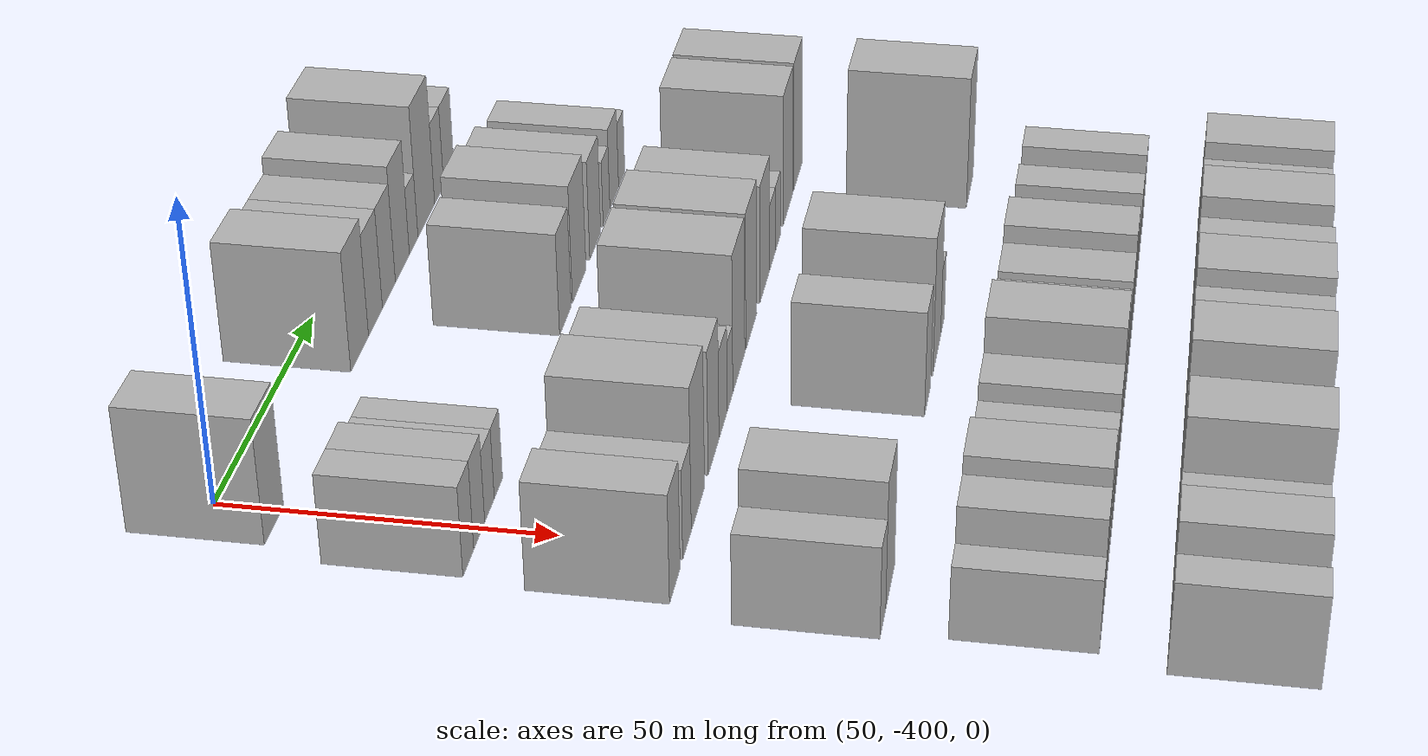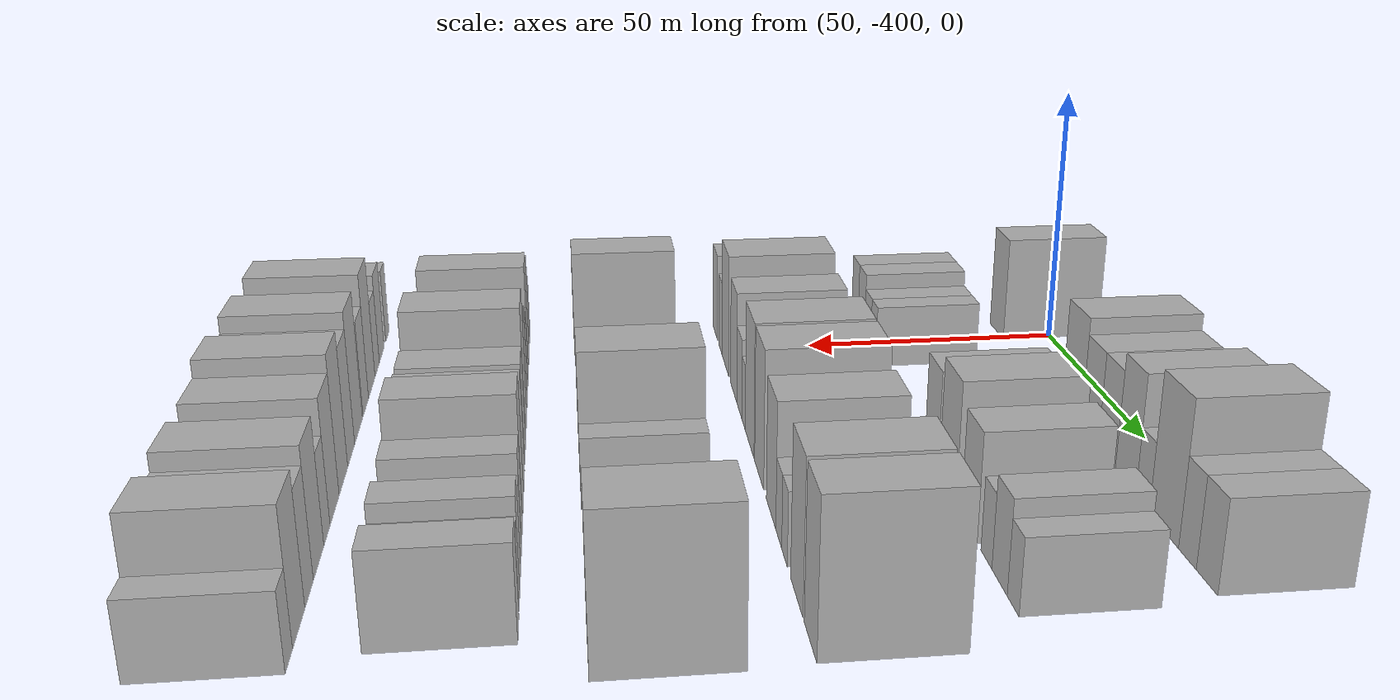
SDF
<sdf version="1.6">
 <world name="default">
  <model name="building_14">
   <static>1</static>
   <pose>50.0000 -403.7910 0 0.000000 0.000000 0.000000</pose>
   <link name="link">
    <pose>0 0 10.50 0 0 0</pose>
    <collision name="collision"><geometry><box><size>20.0000 9.2728 21.0000</size></box></geometry></collision>
    <visual name="visual">
     <cast_shadows>0</cast_shadows>
     <geometry><box><size>20.0000 9.2728 21.0000</size></box></geometry>
     <material>
      <script>
       <uri>model://HANNAS_wall/materials/scripts</uri>
       <uri>model://HANNAS_wall/materials/textures</uri>
       <name>vrc/HANNAS_wall</name>
      </script>
     </material>
    </visual>
   </link>
  </model>
  <model name="building_15">
   <static>1</static>
   <pose>50.0000 -358.9946 0 0.000000 0.000000 0.000000</pose>
   <link name="link">
    <pose>0 0 10.50 0 0 0</pose>
    <collision name="collision"><geometry><box><size>20.0000 10.1067 21.0000</size></box></geometry></collision>
    <visual name="visual">
     <cast_shadows>0</cast_shadows>
     <geometry><box><size>20.0000 10.1067 21.0000</size></box></geometry>
     <material>
      <script>
       <uri>model://HANNAS_wall/materials/scripts</uri>
       <uri>model://HANNAS_wall/materials/textures</uri>
       <name>vrc/HANNAS_wall</name>
      </script>
     </material>
    </visual>
   </link>
  </model>
  <model name="building_16">
   <static>1</static>
   <pose>50.0000 -349.8433 0 0.000000 0.000000 0.000000</pose>
   <link name="link">
    <pose>0 0 9.00 0 0 0</pose>
    <collision name="collision"><geometry><box><size>20.0000 8.1957 18.0000</size></box></geometry></collision>
    <visual name="visual">
     <cast_shadows>0</cast_shadows>
     <geometry><box><size>20.0000 8.1957 18.0000</size></box></geometry>
     <material>
      <script>
       <uri>model://HANNAS_wall/materials/scripts</uri>
       <uri>model://HANNAS_wall/materials/textures</uri>
       <name>vrc/HANNAS_wall</name>
      </script>
     </material>
    </visual>
   </link>
  </model>
  <model name="building_17">
   <static>1</static>
   <pose>50.0000 -341.8175 0 0.000000 0.000000 0.000000</pose>
   <link name="link">
    <pose>0 0 9.00 0 0 0</pose>
    <collision name="collision"><geometry><box><size>20.0000 7.8559 18.0000</size></box></geometry></collision>
    <visual name="visual">
     <cast_shadows>0</cast_shadows>
     <geometry><box><size>20.0000 7.8559 18.0000</size></box></geometry>
     <material>
      <script>
       <uri>model://HANNAS_wall/materials/scripts</uri>
       <uri>model://HANNAS_wall/materials/textures</uri>
       <name>vrc/HANNAS_wall</name>
      </script>
     </material>
    </visual>
   </link>
  </model>
  <model name="building_18">
   <static>1</static>
   <pose>50.0000 -333.5378 0 0.000000 0.000000 0.000000</pose>
   <link name="link">
    <pose>0 0 10.50 0 0 0</pose>
    <collision name="collision"><geometry><box><size>20.0000 8.7036 21.0000</size></box></geometry></collision>
    <visual name="visual">
     <cast_shadows>0</cast_shadows>
     <geometry><box><size>20.0000 8.7036 21.0000</size></box></geometry>
     <material>
      <script>
       <uri>model://HANNAS_wall/materials/scripts</uri>
       <uri>model://HANNAS_wall/materials/textures</uri>
       <name>vrc/HANNAS_wall</name>
      </script>
     </material>
    </visual>
   </link>
  </model>
  <model name="building_19">
   <static>1</static>
   <pose>50.0000 -326.4478 0 0.000000 0.000000 0.000000</pose>
   <link name="link">
    <pose>0 0 6.00 0 0 0</pose>
    <collision name="collision"><geometry><box><size>20.0000 5.4764 12.0000</size></box></geometry></collision>
    <visual name="visual">
     <cast_shadows>0</cast_shadows>
     <geometry><box><size>20.0000 5.4764 12.0000</size></box></geometry>
     <material>
      <script>
       <uri>model://HANNAS_wall/materials/scripts</uri>
       <uri>model://HANNAS_wall/materials/textures</uri>
       <name>vrc/HANNAS_wall</name>
      </script>
     </material>
    </visual>
   </link>
  </model>
  <model name="building_20">
   <static>1</static>
   <pose>50.0000 -318.2352 0 0.000000 0.000000 0.000000</pose>
   <link name="link">
    <pose>0 0 12.00 0 0 0</pose>
    <collision name="collision"><geometry><box><size>20.0000 10.9488 24.0000</size></box></geometry></collision>
    <visual name="visual">
     <cast_shadows>0</cast_shadows>
     <geometry><box><size>20.0000 10.9488 24.0000</size></box></geometry>
     <material>
      <script>
       <uri>model://HANNAS_wall/materials/scripts</uri>
       <uri>model://HANNAS_wall/materials/textures</uri>
       <name>vrc/HANNAS_wall</name>
      </script>
     </material>
    </visual>
   </link>
  </model>
  <model name="building_21">
   <static>1</static>
   <pose>50.0000 -309.6985 0 0.000000 0.000000 0.000000</pose>
   <link name="link">
    <pose>0 0 7.50 0 0 0</pose>
    <collision name="collision"><geometry><box><size>20.0000 6.1246 15.0000</size></box></geometry></collision>
    <visual name="visual">
     <cast_shadows>0</cast_shadows>
     <geometry><box><size>20.0000 6.1246 15.0000</size></box></geometry>
     <material>
      <script>
       <uri>model://HANNAS_wall/materials/scripts</uri>
       <uri>model://HANNAS_wall/materials/textures</uri>
       <name>vrc/HANNAS_wall</name>
      </script>
     </material>
    </visual>
   </link>
  </model>
  <model name="building_22">
   <static>1</static>
   <pose>50.0000 -303.1202 0 0.000000 0.000000 0.000000</pose>
   <link name="link">
    <pose>0 0 7.50 0 0 0</pose>
    <collision name="collision"><geometry><box><size>20.0000 7.0321 15.0000</size></box></geometry></collision>
    <visual name="visual">
     <cast_shadows>0</cast_shadows>
     <geometry><box><size>20.0000 7.0321 15.0000</size></box></geometry>
     <material>
      <script>
       <uri>model://HANNAS_wall/materials/scripts</uri>
       <uri>model://HANNAS_wall/materials/textures</uri>
       <name>vrc/HANNAS_wall</name>
      </script>
     </material>
    </visual>
   </link>
  </model>
  <model name="building_127">
   <static>1</static>
   <pose>79.0000 -408.2824 0 0.000000 0.000000 0.000000</pose>
   <link name="link">
    <pose>0 0 7.50 0 0 0</pose>
    <collision name="collision"><geometry><box><size>20.0000 6.2899 15.0000</size></box></geometry></collision>
    <visual name="visual">
     <cast_shadows>0</cast_shadows>
     <geometry><box><size>20.0000 6.2899 15.0000</size></box></geometry>
     <material>
      <script>
       <uri>model://HANNAS_wall/materials/scripts</uri>
       <uri>model://HANNAS_wall/materials/textures</uri>
       <name>vrc/HANNAS_wall</name>
      </script>
     </material>
    </visual>
   </link>
  </model>
  <model name="building_128">
   <static>1</static>
   <pose>79.0000 -401.8749 0 0.000000 0.000000 0.000000</pose>
   <link name="link">
    <pose>0 0 7.50 0 0 0</pose>
    <collision name="collision"><geometry><box><size>20.0000 6.5253 15.0000</size></box></geometry></collision>
    <visual name="visual">
     <cast_shadows>0</cast_shadows>
     <geometry><box><size>20.0000 6.5253 15.0000</size></box></geometry>
     <material>
      <script>
       <uri>model://HANNAS_wall/materials/scripts</uri>
       <uri>model://HANNAS_wall/materials/textures</uri>
       <name>vrc/HANNAS_wall</name>
      </script>
     </material>
    </visual>
   </link>
  </model>
  <model name="building_129">
   <static>1</static>
   <pose>79.0000 -395.7214 0 0.000000 0.000000 0.000000</pose>
   <link name="link">
    <pose>0 0 6.00 0 0 0</pose>
    <collision name="collision"><geometry><box><size>20.0000 5.7816 12.0000</size></box></geometry></collision>
    <visual name="visual">
     <cast_shadows>0</cast_shadows>
     <geometry><box><size>20.0000 5.7816 12.0000</size></box></geometry>
     <material>
      <script>
       <uri>model://HANNAS_wall/materials/scripts</uri>
       <uri>model://HANNAS_wall/materials/textures</uri>
       <name>vrc/HANNAS_wall</name>
      </script>
     </material>
    </visual>
   </link>
  </model>
  <model name="building_130">
   <static>1</static>
   <pose>79.0000 -390.2579 0 0.000000 0.000000 0.000000</pose>
   <link name="link">
    <pose>0 0 6.00 0 0 0</pose>
    <collision name="collision"><geometry><box><size>20.0000 5.1454 12.0000</size></box></geometry></collision>
    <visual name="visual">
     <cast_shadows>0</cast_shadows>
     <geometry><box><size>20.0000 5.1454 12.0000</size></box></geometry>
     <material>
      <script>
       <uri>model://HANNAS_wall/materials/scripts</uri>
       <uri>model://HANNAS_wall/materials/textures</uri>
       <name>vrc/HANNAS_wall</name>
      </script>
     </material>
    </visual>
   </link>
  </model>
  <model name="building_131">
   <static>1</static>
   <pose>79.0000 -344.8987 0 0.000000 0.000000 0.000000</pose>
   <link name="link">
    <pose>0 0 9.00 0 0 0</pose>
    <collision name="collision"><geometry><box><size>20.0000 8.5244 18.0000</size></box></geometry></collision>
    <visual name="visual">
     <cast_shadows>0</cast_shadows>
     <geometry><box><size>20.0000 8.5244 18.0000</size></box></geometry>
     <material>
      <script>
       <uri>model://HANNAS_wall/materials/scripts</uri>
       <uri>model://HANNAS_wall/materials/textures</uri>
       <name>vrc/HANNAS_wall</name>
      </script>
     </material>
    </visual>
   </link>
  </model>
  <model name="building_132">
   <static>1</static>
   <pose>79.0000 -334.4951 0 0.000000 0.000000 0.000000</pose>
   <link name="link">
    <pose>0 0 10.50 0 0 0</pose>
    <collision name="collision"><geometry><box><size>20.0000 10.2828 21.0000</size></box></geometry></collision>
    <visual name="visual">
     <cast_shadows>0</cast_shadows>
     <geometry><box><size>20.0000 10.2828 21.0000</size></box></geometry>
     <material>
      <script>
       <uri>model://HANNAS_wall/materials/scripts</uri>
       <uri>model://HANNAS_wall/materials/textures</uri>
       <name>vrc/HANNAS_wall</name>
      </script>
     </material>
    </visual>
   </link>
  </model>
  <model name="building_133">
   <static>1</static>
   <pose>79.0000 -321.9960 0 0.000000 0.000000 0.000000</pose>
   <link name="link">
    <pose>0 0 9.00 0 0 0</pose>
    <collision name="collision"><geometry><box><size>20.0000 8.7153 18.0000</size></box></geometry></collision>
    <visual name="visual">
     <cast_shadows>0</cast_shadows>
     <geometry><box><size>20.0000 8.7153 18.0000</size></box></geometry>
     <material>
      <script>
       <uri>model://HANNAS_wall/materials/scripts</uri>
       <uri>model://HANNAS_wall/materials/textures</uri>
       <name>vrc/HANNAS_wall</name>
      </script>
     </material>
    </visual>
   </link>
  </model>
  <model name="building_134">
   <static>1</static>
   <pose>79.0000 -312.8724 0 0.000000 0.000000 0.000000</pose>
   <link name="link">
    <pose>0 0 6.00 0 0 0</pose>
    <collision name="collision"><geometry><box><size>20.0000 5.5320 12.0000</size></box></geometry></collision>
    <visual name="visual">
     <cast_shadows>0</cast_shadows>
     <geometry><box><size>20.0000 5.5320 12.0000</size></box></geometry>
     <material>
      <script>
       <uri>model://HANNAS_wall/materials/scripts</uri>
       <uri>model://HANNAS_wall/materials/textures</uri>
       <name>vrc/HANNAS_wall</name>
      </script>
     </material>
    </visual>
   </link>
  </model>
  <model name="building_135">
   <static>1</static>
   <pose>79.0000 -306.4545 0 0.000000 0.000000 0.000000</pose>
   <link name="link">
    <pose>0 0 7.50 0 0 0</pose>
    <collision name="collision"><geometry><box><size>20.0000 7.3039 15.0000</size></box></geometry></collision>
    <visual name="visual">
     <cast_shadows>0</cast_shadows>
     <geometry><box><size>20.0000 7.3039 15.0000</size></box></geometry>
     <material>
      <script>
       <uri>model://HANNAS_wall/materials/scripts</uri>
       <uri>model://HANNAS_wall/materials/textures</uri>
       <name>vrc/HANNAS_wall</name>
      </script>
     </material>
    </visual>
   </link>
  </model>
  <model name="building_136">
   <static>1</static>
   <pose>79.0000 -300.1336 0 0.000000 0.000000 0.000000</pose>
   <link name="link">
    <pose>0 0 6.00 0 0 0</pose>
    <collision name="collision"><geometry><box><size>20.0000 5.3379 12.0000</size></box></geometry></collision>
    <visual name="visual">
     <cast_shadows>0</cast_shadows>
     <geometry><box><size>20.0000 5.3379 12.0000</size></box></geometry>
     <material>
      <script>
       <uri>model://HANNAS_wall/materials/scripts</uri>
       <uri>model://HANNAS_wall/materials/textures</uri>
       <name>vrc/HANNAS_wall</name>
      </script>
     </material>
    </visual>
   </link>
  </model>
  <model name="building_231">
   <static>1</static>
   <pose>108.0000 -408.9824 0 0.000000 0.000000 0.000000</pose>
   <link name="link">
    <pose>0 0 9.00 0 0 0</pose>
    <collision name="collision"><geometry><box><size>20.0000 8.0269 18.0000</size></box></geometry></collision>
    <visual name="visual">
     <cast_shadows>0</cast_shadows>
     <geometry><box><size>20.0000 8.0269 18.0000</size></box></geometry>
     <material>
      <script>
       <uri>model://HANNAS_wall/materials/scripts</uri>
       <uri>model://HANNAS_wall/materials/textures</uri>
       <name>vrc/HANNAS_wall</name>
      </script>
     </material>
    </visual>
   </link>
  </model>
  <model name="building_232">
   <static>1</static>
   <pose>108.0000 -399.6079 0 0.000000 0.000000 0.000000</pose>
   <link name="link">
    <pose>0 0 7.50 0 0 0</pose>
    <collision name="collision"><geometry><box><size>20.0000 6.7221 15.0000</size></box></geometry></collision>
    <visual name="visual">
     <cast_shadows>0</cast_shadows>
     <geometry><box><size>20.0000 6.7221 15.0000</size></box></geometry>
     <material>
      <script>
       <uri>model://HANNAS_wall/materials/scripts</uri>
       <uri>model://HANNAS_wall/materials/textures</uri>
       <name>vrc/HANNAS_wall</name>
      </script>
     </material>
    </visual>
   </link>
  </model>
  <model name="building_233">
   <static>1</static>
   <pose>108.0000 -390.8553 0 0.000000 0.000000 0.000000</pose>
   <link name="link">
    <pose>0 0 12.00 0 0 0</pose>
    <collision name="collision"><geometry><box><size>20.0000 10.7832 24.0000</size></box></geometry></collision>
    <visual name="visual">
     <cast_shadows>0</cast_shadows>
     <geometry><box><size>20.0000 10.7832 24.0000</size></box></geometry>
     <material>
      <script>
       <uri>model://HANNAS_wall/materials/scripts</uri>
       <uri>model://HANNAS_wall/materials/textures</uri>
       <name>vrc/HANNAS_wall</name>
      </script>
     </material>
    </visual>
   </link>
  </model>
  <model name="building_234">
   <static>1</static>
   <pose>108.0000 -377.8602 0 0.000000 0.000000 0.000000</pose>
   <link name="link">
    <pose>0 0 10.50 0 0 0</pose>
    <collision name="collision"><geometry><box><size>20.0000 9.2069 21.0000</size></box></geometry></collision>
    <visual name="visual">
     <cast_shadows>0</cast_shadows>
     <geometry><box><size>20.0000 9.2069 21.0000</size></box></geometry>
     <material>
      <script>
       <uri>model://HANNAS_wall/materials/scripts</uri>
       <uri>model://HANNAS_wall/materials/textures</uri>
       <name>vrc/HANNAS_wall</name>
      </script>
     </material>
    </visual>
   </link>
  </model>
  <model name="building_235">
   <static>1</static>
   <pose>108.0000 -369.5949 0 0.000000 0.000000 0.000000</pose>
   <link name="link">
    <pose>0 0 7.50 0 0 0</pose>
    <collision name="collision"><geometry><box><size>20.0000 7.3237 15.0000</size></box></geometry></collision>
    <visual name="visual">
     <cast_shadows>0</cast_shadows>
     <geometry><box><size>20.0000 7.3237 15.0000</size></box></geometry>
     <material>
      <script>
       <uri>model://HANNAS_wall/materials/scripts</uri>
       <uri>model://HANNAS_wall/materials/textures</uri>
       <name>vrc/HANNAS_wall</name>
      </script>
     </material>
    </visual>
   </link>
  </model>
  <model name="building_236">
   <static>1</static>
   <pose>108.0000 -363.4391 0 0.000000 0.000000 0.000000</pose>
   <link name="link">
    <pose>0 0 6.00 0 0 0</pose>
    <collision name="collision"><geometry><box><size>20.0000 4.9880 12.0000</size></box></geometry></collision>
    <visual name="visual">
     <cast_shadows>0</cast_shadows>
     <geometry><box><size>20.0000 4.9880 12.0000</size></box></geometry>
     <material>
      <script>
       <uri>model://HANNAS_wall/materials/scripts</uri>
       <uri>model://HANNAS_wall/materials/textures</uri>
       <name>vrc/HANNAS_wall</name>
      </script>
     </material>
    </visual>
   </link>
  </model>
  <model name="building_237">
   <static>1</static>
   <pose>108.0000 -355.3836 0 0.000000 0.000000 0.000000</pose>
   <link name="link">
    <pose>0 0 12.00 0 0 0</pose>
    <collision name="collision"><geometry><box><size>20.0000 11.1229 24.0000</size></box></geometry></collision>
    <visual name="visual">
     <cast_shadows>0</cast_shadows>
     <geometry><box><size>20.0000 11.1229 24.0000</size></box></geometry>
     <material>
      <script>
       <uri>model://HANNAS_wall/materials/scripts</uri>
       <uri>model://HANNAS_wall/materials/textures</uri>
       <name>vrc/HANNAS_wall</name>
      </script>
     </material>
    </visual>
   </link>
  </model>
  <model name="building_238">
   <static>1</static>
   <pose>108.0000 -343.4930 0 0.000000 0.000000 0.000000</pose>
   <link name="link">
    <pose>0 0 12.00 0 0 0</pose>
    <collision name="collision"><geometry><box><size>20.0000 10.6583 24.0000</size></box></geometry></collision>
    <visual name="visual">
     <cast_shadows>0</cast_shadows>
     <geometry><box><size>20.0000 10.6583 24.0000</size></box></geometry>
     <material>
      <script>
       <uri>model://HANNAS_wall/materials/scripts</uri>
       <uri>model://HANNAS_wall/materials/textures</uri>
       <name>vrc/HANNAS_wall</name>
      </script>
     </material>
    </visual>
   </link>
  </model>
  <model name="building_239">
   <static>1</static>
   <pose>108.0000 -330.1484 0 0.000000 0.000000 0.000000</pose>
   <link name="link">
    <pose>0 0 10.50 0 0 0</pose>
    <collision name="collision"><geometry><box><size>20.0000 10.0309 21.0000</size></box></geometry></collision>
    <visual name="visual">
     <cast_shadows>0</cast_shadows>
     <geometry><box><size>20.0000 10.0309 21.0000</size></box></geometry>
     <material>
      <script>
       <uri>model://HANNAS_wall/materials/scripts</uri>
       <uri>model://HANNAS_wall/materials/textures</uri>
       <name>vrc/HANNAS_wall</name>
      </script>
     </material>
    </visual>
   </link>
  </model>
  <model name="building_240">
   <static>1</static>
   <pose>108.0000 -322.2092 0 0.000000 0.000000 0.000000</pose>
   <link name="link">
    <pose>0 0 6.00 0 0 0</pose>
    <collision name="collision"><geometry><box><size>20.0000 5.8475 12.0000</size></box></geometry></collision>
    <visual name="visual">
     <cast_shadows>0</cast_shadows>
     <geometry><box><size>20.0000 5.8475 12.0000</size></box></geometry>
     <material>
      <script>
       <uri>model://HANNAS_wall/materials/scripts</uri>
       <uri>model://HANNAS_wall/materials/textures</uri>
       <name>vrc/HANNAS_wall</name>
      </script>
     </material>
    </visual>
   </link>
  </model>
  <model name="building_241">
   <static>1</static>
   <pose>108.0000 -316.6470 0 0.000000 0.000000 0.000000</pose>
   <link name="link">
    <pose>0 0 6.00 0 0 0</pose>
    <collision name="collision"><geometry><box><size>20.0000 5.2770 12.0000</size></box></geometry></collision>
    <visual name="visual">
     <cast_shadows>0</cast_shadows>
     <geometry><box><size>20.0000 5.2770 12.0000</size></box></geometry>
     <material>
      <script>
       <uri>model://HANNAS_wall/materials/scripts</uri>
       <uri>model://HANNAS_wall/materials/textures</uri>
       <name>vrc/HANNAS_wall</name>
      </script>
     </material>
    </visual>
   </link>
  </model>
  <model name="building_242">
   <static>1</static>
   <pose>108.0000 -305.7270 0 0.000000 0.000000 0.000000</pose>
   <link name="link">
    <pose>0 0 12.00 0 0 0</pose>
    <collision name="collision"><geometry><box><size>20.0000 10.5631 24.0000</size></box></geometry></collision>
    <visual name="visual">
     <cast_shadows>0</cast_shadows>
     <geometry><box><size>20.0000 10.5631 24.0000</size></box></geometry>
     <material>
      <script>
       <uri>model://HANNAS_wall/materials/scripts</uri>
       <uri>model://HANNAS_wall/materials/textures</uri>
       <name>vrc/HANNAS_wall</name>
      </script>
     </material>
    </visual>
   </link>
  </model>
  <model name="building_243">
   <static>1</static>
   <pose>108.0000 -294.5891 0 0.000000 0.000000 0.000000</pose>
   <link name="link">
    <pose>0 0 12.00 0 0 0</pose>
    <collision name="collision"><geometry><box><size>20.0000 9.7126 24.0000</size></box></geometry></collision>
    <visual name="visual">
     <cast_shadows>0</cast_shadows>
     <geometry><box><size>20.0000 9.7126 24.0000</size></box></geometry>
     <material>
      <script>
       <uri>model://HANNAS_wall/materials/scripts</uri>
       <uri>model://HANNAS_wall/materials/textures</uri>
       <name>vrc/HANNAS_wall</name>
      </script>
     </material>
    </visual>
   </link>
  </model>
  <model name="building_341">
   <static>1</static>
   <pose>137.0000 -412.9906 0 0.000000 0.000000 0.000000</pose>
   <link name="link">
    <pose>0 0 7.50 0 0 0</pose>
    <collision name="collision"><geometry><box><size>20.0000 6.3452 15.0000</size></box></geometry></collision>
    <visual name="visual">
     <cast_shadows>0</cast_shadows>
     <geometry><box><size>20.0000 6.3452 15.0000</size></box></geometry>
     <material>
      <script>
       <uri>model://HANNAS_wall/materials/scripts</uri>
       <uri>model://HANNAS_wall/materials/textures</uri>
       <name>vrc/HANNAS_wall</name>
      </script>
     </material>
    </visual>
   </link>
  </model>
  <model name="building_342">
   <static>1</static>
   <pose>137.0000 -404.8087 0 0.000000 0.000000 0.000000</pose>
   <link name="link">
    <pose>0 0 10.50 0 0 0</pose>
    <collision name="collision"><geometry><box><size>20.0000 10.0185 21.0000</size></box></geometry></collision>
    <visual name="visual">
     <cast_shadows>0</cast_shadows>
     <geometry><box><size>20.0000 10.0185 21.0000</size></box></geometry>
     <material>
      <script>
       <uri>model://HANNAS_wall/materials/scripts</uri>
       <uri>model://HANNAS_wall/materials/textures</uri>
       <name>vrc/HANNAS_wall</name>
      </script>
     </material>
    </visual>
   </link>
  </model>
  <model name="building_343">
   <static>1</static>
   <pose>137.0000 -358.6178 0 0.000000 0.000000 0.000000</pose>
   <link name="link">
    <pose>0 0 9.00 0 0 0</pose>
    <collision name="collision"><geometry><box><size>20.0000 8.1211 18.0000</size></box></geometry></collision>
    <visual name="visual">
     <cast_shadows>0</cast_shadows>
     <geometry><box><size>20.0000 8.1211 18.0000</size></box></geometry>
     <material>
      <script>
       <uri>model://HANNAS_wall/materials/scripts</uri>
       <uri>model://HANNAS_wall/materials/textures</uri>
       <name>vrc/HANNAS_wall</name>
      </script>
     </material>
    </visual>
   </link>
  </model>
  <model name="building_344">
   <static>1</static>
   <pose>137.0000 -345.9859 0 0.000000 0.000000 0.000000</pose>
   <link name="link">
    <pose>0 0 12.00 0 0 0</pose>
    <collision name="collision"><geometry><box><size>20.0000 11.1427 24.0000</size></box></geometry></collision>
    <visual name="visual">
     <cast_shadows>0</cast_shadows>
     <geometry><box><size>20.0000 11.1427 24.0000</size></box></geometry>
     <material>
      <script>
       <uri>model://HANNAS_wall/materials/scripts</uri>
       <uri>model://HANNAS_wall/materials/textures</uri>
       <name>vrc/HANNAS_wall</name>
      </script>
     </material>
    </visual>
   </link>
  </model>
  <model name="building_345">
   <static>1</static>
   <pose>137.0000 -337.6833 0 0.000000 0.000000 0.000000</pose>
   <link name="link">
    <pose>0 0 6.00 0 0 0</pose>
    <collision name="collision"><geometry><box><size>20.0000 5.4625 12.0000</size></box></geometry></collision>
    <visual name="visual">
     <cast_shadows>0</cast_shadows>
     <geometry><box><size>20.0000 5.4625 12.0000</size></box></geometry>
     <material>
      <script>
       <uri>model://HANNAS_wall/materials/scripts</uri>
       <uri>model://HANNAS_wall/materials/textures</uri>
       <name>vrc/HANNAS_wall</name>
      </script>
     </material>
    </visual>
   </link>
  </model>
  <model name="building_346">
   <static>1</static>
   <pose>137.0000 -294.7424 0 0.000000 0.000000 0.000000</pose>
   <link name="link">
    <pose>0 0 12.00 0 0 0</pose>
    <collision name="collision"><geometry><box><size>20.0000 11.4731 24.0000</size></box></geometry></collision>
    <visual name="visual">
     <cast_shadows>0</cast_shadows>
     <geometry><box><size>20.0000 11.4731 24.0000</size></box></geometry>
     <material>
      <script>
       <uri>model://HANNAS_wall/materials/scripts</uri>
       <uri>model://HANNAS_wall/materials/textures</uri>
       <name>vrc/HANNAS_wall</name>
      </script>
     </material>
    </visual>
   </link>
  </model>
  <model name="building_450">
   <static>1</static>
   <pose>166.0000 -412.1983 0 0.000000 0.000000 0.000000</pose>
   <link name="link">
    <pose>0 0 6.00 0 0 0</pose>
    <collision name="collision"><geometry><box><size>20.0000 5.2670 12.0000</size></box></geometry></collision>
    <visual name="visual">
     <cast_shadows>0</cast_shadows>
     <geometry><box><size>20.0000 5.2670 12.0000</size></box></geometry>
     <material>
      <script>
       <uri>model://HANNAS_wall/materials/scripts</uri>
       <uri>model://HANNAS_wall/materials/textures</uri>
       <name>vrc/HANNAS_wall</name>
      </script>
     </material>
    </visual>
   </link>
  </model>
  <model name="building_451">
   <static>1</static>
   <pose>166.0000 -405.8540 0 0.000000 0.000000 0.000000</pose>
   <link name="link">
    <pose>0 0 9.00 0 0 0</pose>
    <collision name="collision"><geometry><box><size>20.0000 7.4218 18.0000</size></box></geometry></collision>
    <visual name="visual">
     <cast_shadows>0</cast_shadows>
     <geometry><box><size>20.0000 7.4218 18.0000</size></box></geometry>
     <material>
      <script>
       <uri>model://HANNAS_wall/materials/scripts</uri>
       <uri>model://HANNAS_wall/materials/textures</uri>
       <name>vrc/HANNAS_wall</name>
      </script>
     </material>
    </visual>
   </link>
  </model>
  <model name="building_452">
   <static>1</static>
   <pose>166.0000 -397.4886 0 0.000000 0.000000 0.000000</pose>
   <link name="link">
    <pose>0 0 10.50 0 0 0</pose>
    <collision name="collision"><geometry><box><size>20.0000 9.3090 21.0000</size></box></geometry></collision>
    <visual name="visual">
     <cast_shadows>0</cast_shadows>
     <geometry><box><size>20.0000 9.3090 21.0000</size></box></geometry>
     <material>
      <script>
       <uri>model://HANNAS_wall/materials/scripts</uri>
       <uri>model://HANNAS_wall/materials/textures</uri>
       <name>vrc/HANNAS_wall</name>
      </script>
     </material>
    </visual>
   </link>
  </model>
  <model name="building_453">
   <static>1</static>
   <pose>166.0000 -389.9196 0 0.000000 0.000000 0.000000</pose>
   <link name="link">
    <pose>0 0 6.00 0 0 0</pose>
    <collision name="collision"><geometry><box><size>20.0000 5.8289 12.0000</size></box></geometry></collision>
    <visual name="visual">
     <cast_shadows>0</cast_shadows>
     <geometry><box><size>20.0000 5.8289 12.0000</size></box></geometry>
     <material>
      <script>
       <uri>model://HANNAS_wall/materials/scripts</uri>
       <uri>model://HANNAS_wall/materials/textures</uri>
       <name>vrc/HANNAS_wall</name>
      </script>
     </material>
    </visual>
   </link>
  </model>
  <model name="building_454">
   <static>1</static>
   <pose>166.0000 -383.3437 0 0.000000 0.000000 0.000000</pose>
   <link name="link">
    <pose>0 0 7.50 0 0 0</pose>
    <collision name="collision"><geometry><box><size>20.0000 7.3229 15.0000</size></box></geometry></collision>
    <visual name="visual">
     <cast_shadows>0</cast_shadows>
     <geometry><box><size>20.0000 7.3229 15.0000</size></box></geometry>
     <material>
      <script>
       <uri>model://HANNAS_wall/materials/scripts</uri>
       <uri>model://HANNAS_wall/materials/textures</uri>
       <name>vrc/HANNAS_wall</name>
      </script>
     </material>
    </visual>
   </link>
  </model>
  <model name="building_455">
   <static>1</static>
   <pose>166.0000 -375.7868 0 0.000000 0.000000 0.000000</pose>
   <link name="link">
    <pose>0 0 9.00 0 0 0</pose>
    <collision name="collision"><geometry><box><size>20.0000 7.7909 18.0000</size></box></geometry></collision>
    <visual name="visual">
     <cast_shadows>0</cast_shadows>
     <geometry><box><size>20.0000 7.7909 18.0000</size></box></geometry>
     <material>
      <script>
       <uri>model://HANNAS_wall/materials/scripts</uri>
       <uri>model://HANNAS_wall/materials/textures</uri>
       <name>vrc/HANNAS_wall</name>
      </script>
     </material>
    </visual>
   </link>
  </model>
  <model name="building_456">
   <static>1</static>
   <pose>166.0000 -366.7967 0 0.000000 0.000000 0.000000</pose>
   <link name="link">
    <pose>0 0 12.00 0 0 0</pose>
    <collision name="collision"><geometry><box><size>20.0000 10.1893 24.0000</size></box></geometry></collision>
    <visual name="visual">
     <cast_shadows>0</cast_shadows>
     <geometry><box><size>20.0000 10.1893 24.0000</size></box></geometry>
     <material>
      <script>
       <uri>model://HANNAS_wall/materials/scripts</uri>
       <uri>model://HANNAS_wall/materials/textures</uri>
       <name>vrc/HANNAS_wall</name>
      </script>
     </material>
    </visual>
   </link>
  </model>
  <model name="building_457">
   <static>1</static>
   <pose>166.0000 -355.5881 0 0.000000 0.000000 0.000000</pose>
   <link name="link">
    <pose>0 0 9.00 0 0 0</pose>
    <collision name="collision"><geometry><box><size>20.0000 8.2279 18.0000</size></box></geometry></collision>
    <visual name="visual">
     <cast_shadows>0</cast_shadows>
     <geometry><box><size>20.0000 8.2279 18.0000</size></box></geometry>
     <material>
      <script>
       <uri>model://HANNAS_wall/materials/scripts</uri>
       <uri>model://HANNAS_wall/materials/textures</uri>
       <name>vrc/HANNAS_wall</name>
      </script>
     </material>
    </visual>
   </link>
  </model>
  <model name="building_458">
   <static>1</static>
   <pose>166.0000 -345.1992 0 0.000000 0.000000 0.000000</pose>
   <link name="link">
    <pose>0 0 9.00 0 0 0</pose>
    <collision name="collision"><geometry><box><size>20.0000 8.5498 18.0000</size></box></geometry></collision>
    <visual name="visual">
     <cast_shadows>0</cast_shadows>
     <geometry><box><size>20.0000 8.5498 18.0000</size></box></geometry>
     <material>
      <script>
       <uri>model://HANNAS_wall/materials/scripts</uri>
       <uri>model://HANNAS_wall/materials/textures</uri>
       <name>vrc/HANNAS_wall</name>
      </script>
     </material>
    </visual>
   </link>
  </model>
  <model name="building_459">
   <static>1</static>
   <pose>166.0000 -336.5576 0 0.000000 0.000000 0.000000</pose>
   <link name="link">
    <pose>0 0 10.50 0 0 0</pose>
    <collision name="collision"><geometry><box><size>20.0000 8.7335 21.0000</size></box></geometry></collision>
    <visual name="visual">
     <cast_shadows>0</cast_shadows>
     <geometry><box><size>20.0000 8.7335 21.0000</size></box></geometry>
     <material>
      <script>
       <uri>model://HANNAS_wall/materials/scripts</uri>
       <uri>model://HANNAS_wall/materials/textures</uri>
       <name>vrc/HANNAS_wall</name>
      </script>
     </material>
    </visual>
   </link>
  </model>
  <model name="building_460">
   <static>1</static>
   <pose>166.0000 -327.8503 0 0.000000 0.000000 0.000000</pose>
   <link name="link">
    <pose>0 0 7.50 0 0 0</pose>
    <collision name="collision"><geometry><box><size>20.0000 6.6811 15.0000</size></box></geometry></collision>
    <visual name="visual">
     <cast_shadows>0</cast_shadows>
     <geometry><box><size>20.0000 6.6811 15.0000</size></box></geometry>
     <material>
      <script>
       <uri>model://HANNAS_wall/materials/scripts</uri>
       <uri>model://HANNAS_wall/materials/textures</uri>
       <name>vrc/HANNAS_wall</name>
      </script>
     </material>
    </visual>
   </link>
  </model>
  <model name="building_461">
   <static>1</static>
   <pose>166.0000 -320.6179 0 0.000000 0.000000 0.000000</pose>
   <link name="link">
    <pose>0 0 6.00 0 0 0</pose>
    <collision name="collision"><geometry><box><size>20.0000 5.7836 12.0000</size></box></geometry></collision>
    <visual name="visual">
     <cast_shadows>0</cast_shadows>
     <geometry><box><size>20.0000 5.7836 12.0000</size></box></geometry>
     <material>
      <script>
       <uri>model://HANNAS_wall/materials/scripts</uri>
       <uri>model://HANNAS_wall/materials/textures</uri>
       <name>vrc/HANNAS_wall</name>
      </script>
     </material>
    </visual>
   </link>
  </model>
  <model name="building_462">
   <static>1</static>
   <pose>166.0000 -314.4210 0 0.000000 0.000000 0.000000</pose>
   <link name="link">
    <pose>0 0 7.50 0 0 0</pose>
    <collision name="collision"><geometry><box><size>20.0000 6.6102 15.0000</size></box></geometry></collision>
    <visual name="visual">
     <cast_shadows>0</cast_shadows>
     <geometry><box><size>20.0000 6.6102 15.0000</size></box></geometry>
     <material>
      <script>
       <uri>model://HANNAS_wall/materials/scripts</uri>
       <uri>model://HANNAS_wall/materials/textures</uri>
       <name>vrc/HANNAS_wall</name>
      </script>
     </material>
    </visual>
   </link>
  </model>
  <model name="building_463">
   <static>1</static>
   <pose>166.0000 -308.6588 0 0.000000 0.000000 0.000000</pose>
   <link name="link">
    <pose>0 0 6.00 0 0 0</pose>
    <collision name="collision"><geometry><box><size>20.0000 4.9142 12.0000</size></box></geometry></collision>
    <visual name="visual">
     <cast_shadows>0</cast_shadows>
     <geometry><box><size>20.0000 4.9142 12.0000</size></box></geometry>
     <material>
      <script>
       <uri>model://HANNAS_wall/materials/scripts</uri>
       <uri>model://HANNAS_wall/materials/textures</uri>
       <name>vrc/HANNAS_wall</name>
      </script>
     </material>
    </visual>
   </link>
  </model>
  <model name="building_464">
   <static>1</static>
   <pose>166.0000 -301.7876 0 0.000000 0.000000 0.000000</pose>
   <link name="link">
    <pose>0 0 7.50 0 0 0</pose>
    <collision name="collision"><geometry><box><size>20.0000 6.8284 15.0000</size></box></geometry></collision>
    <visual name="visual">
     <cast_shadows>0</cast_shadows>
     <geometry><box><size>20.0000 6.8284 15.0000</size></box></geometry>
     <material>
      <script>
       <uri>model://HANNAS_wall/materials/scripts</uri>
       <uri>model://HANNAS_wall/materials/textures</uri>
       <name>vrc/HANNAS_wall</name>
      </script>
     </material>
    </visual>
   </link>
  </model>
  <model name="building_571">
   <static>1</static>
   <pose>195.0000 -414.6275 0 0.000000 0.000000 0.000000</pose>
   <link name="link">
    <pose>0 0 7.50 0 0 0</pose>
    <collision name="collision"><geometry><box><size>20.0000 6.3788 15.0000</size></box></geometry></collision>
    <visual name="visual">
     <cast_shadows>0</cast_shadows>
     <geometry><box><size>20.0000 6.3788 15.0000</size></box></geometry>
     <material>
      <script>
       <uri>model://HANNAS_wall/materials/scripts</uri>
       <uri>model://HANNAS_wall/materials/textures</uri>
       <name>vrc/HANNAS_wall</name>
      </script>
     </material>
    </visual>
   </link>
  </model>
  <model name="building_572">
   <static>1</static>
   <pose>195.0000 -404.2394 0 0.000000 0.000000 0.000000</pose>
   <link name="link">
    <pose>0 0 9.00 0 0 0</pose>
    <collision name="collision"><geometry><box><size>20.0000 8.3973 18.0000</size></box></geometry></collision>
    <visual name="visual">
     <cast_shadows>0</cast_shadows>
     <geometry><box><size>20.0000 8.3973 18.0000</size></box></geometry>
     <material>
      <script>
       <uri>model://HANNAS_wall/materials/scripts</uri>
       <uri>model://HANNAS_wall/materials/textures</uri>
       <name>vrc/HANNAS_wall</name>
      </script>
     </material>
    </visual>
   </link>
  </model>
  <model name="building_573">
   <static>1</static>
   <pose>195.0000 -396.3860 0 0.000000 0.000000 0.000000</pose>
   <link name="link">
    <pose>0 0 7.50 0 0 0</pose>
    <collision name="collision"><geometry><box><size>20.0000 7.3094 15.0000</size></box></geometry></collision>
    <visual name="visual">
     <cast_shadows>0</cast_shadows>
     <geometry><box><size>20.0000 7.3094 15.0000</size></box></geometry>
     <material>
      <script>
       <uri>model://HANNAS_wall/materials/scripts</uri>
       <uri>model://HANNAS_wall/materials/textures</uri>
       <name>vrc/HANNAS_wall</name>
      </script>
     </material>
    </visual>
   </link>
  </model>
  <model name="building_574">
   <static>1</static>
   <pose>195.0000 -387.6187 0 0.000000 0.000000 0.000000</pose>
   <link name="link">
    <pose>0 0 12.00 0 0 0</pose>
    <collision name="collision"><geometry><box><size>20.0000 10.2252 24.0000</size></box></geometry></collision>
    <visual name="visual">
     <cast_shadows>0</cast_shadows>
     <geometry><box><size>20.0000 10.2252 24.0000</size></box></geometry>
     <material>
      <script>
       <uri>model://HANNAS_wall/materials/scripts</uri>
       <uri>model://HANNAS_wall/materials/textures</uri>
       <name>vrc/HANNAS_wall</name>
      </script>
     </material>
    </visual>
   </link>
  </model>
  <model name="building_575">
   <static>1</static>
   <pose>195.0000 -378.4452 0 0.000000 0.000000 0.000000</pose>
   <link name="link">
    <pose>0 0 9.00 0 0 0</pose>
    <collision name="collision"><geometry><box><size>20.0000 8.1218 18.0000</size></box></geometry></collision>
    <visual name="visual">
     <cast_shadows>0</cast_shadows>
     <geometry><box><size>20.0000 8.1218 18.0000</size></box></geometry>
     <material>
      <script>
       <uri>model://HANNAS_wall/materials/scripts</uri>
       <uri>model://HANNAS_wall/materials/textures</uri>
       <name>vrc/HANNAS_wall</name>
      </script>
     </material>
    </visual>
   </link>
  </model>
  <model name="building_576">
   <static>1</static>
   <pose>195.0000 -368.0747 0 0.000000 0.000000 0.000000</pose>
   <link name="link">
    <pose>0 0 12.00 0 0 0</pose>
    <collision name="collision"><geometry><box><size>20.0000 10.6193 24.0000</size></box></geometry></collision>
    <visual name="visual">
     <cast_shadows>0</cast_shadows>
     <geometry><box><size>20.0000 10.6193 24.0000</size></box></geometry>
     <material>
      <script>
       <uri>model://HANNAS_wall/materials/scripts</uri>
       <uri>model://HANNAS_wall/materials/textures</uri>
       <name>vrc/HANNAS_wall</name>
      </script>
     </material>
    </visual>
   </link>
  </model>
  <model name="building_577">
   <static>1</static>
   <pose>195.0000 -358.3354 0 0.000000 0.000000 0.000000</pose>
   <link name="link">
    <pose>0 0 10.50 0 0 0</pose>
    <collision name="collision"><geometry><box><size>20.0000 8.8592 21.0000</size></box></geometry></collision>
    <visual name="visual">
     <cast_shadows>0</cast_shadows>
     <geometry><box><size>20.0000 8.8592 21.0000</size></box></geometry>
     <material>
      <script>
       <uri>model://HANNAS_wall/materials/scripts</uri>
       <uri>model://HANNAS_wall/materials/textures</uri>
       <name>vrc/HANNAS_wall</name>
      </script>
     </material>
    </visual>
   </link>
  </model>
  <model name="building_578">
   <static>1</static>
   <pose>195.0000 -348.8309 0 0.000000 0.000000 0.000000</pose>
   <link name="link">
    <pose>0 0 12.00 0 0 0</pose>
    <collision name="collision"><geometry><box><size>20.0000 10.1499 24.0000</size></box></geometry></collision>
    <visual name="visual">
     <cast_shadows>0</cast_shadows>
     <geometry><box><size>20.0000 10.1499 24.0000</size></box></geometry>
     <material>
      <script>
       <uri>model://HANNAS_wall/materials/scripts</uri>
       <uri>model://HANNAS_wall/materials/textures</uri>
       <name>vrc/HANNAS_wall</name>
      </script>
     </material>
    </visual>
   </link>
  </model>
  <model name="building_579">
   <static>1</static>
   <pose>195.0000 -338.8218 0 0.000000 0.000000 0.000000</pose>
   <link name="link">
    <pose>0 0 10.50 0 0 0</pose>
    <collision name="collision"><geometry><box><size>20.0000 9.8684 21.0000</size></box></geometry></collision>
    <visual name="visual">
     <cast_shadows>0</cast_shadows>
     <geometry><box><size>20.0000 9.8684 21.0000</size></box></geometry>
     <material>
      <script>
       <uri>model://HANNAS_wall/materials/scripts</uri>
       <uri>model://HANNAS_wall/materials/textures</uri>
       <name>vrc/HANNAS_wall</name>
      </script>
     </material>
    </visual>
   </link>
  </model>
  <model name="building_580">
   <static>1</static>
   <pose>195.0000 -330.7395 0 0.000000 0.000000 0.000000</pose>
   <link name="link">
    <pose>0 0 7.50 0 0 0</pose>
    <collision name="collision"><geometry><box><size>20.0000 6.2962 15.0000</size></box></geometry></collision>
    <visual name="visual">
     <cast_shadows>0</cast_shadows>
     <geometry><box><size>20.0000 6.2962 15.0000</size></box></geometry>
     <material>
      <script>
       <uri>model://HANNAS_wall/materials/scripts</uri>
       <uri>model://HANNAS_wall/materials/textures</uri>
       <name>vrc/HANNAS_wall</name>
      </script>
     </material>
    </visual>
   </link>
  </model>
  <model name="building_581">
   <static>1</static>
   <pose>195.0000 -322.6420 0 0.000000 0.000000 0.000000</pose>
   <link name="link">
    <pose>0 0 10.50 0 0 0</pose>
    <collision name="collision"><geometry><box><size>20.0000 9.8986 21.0000</size></box></geometry></collision>
    <visual name="visual">
     <cast_shadows>0</cast_shadows>
     <geometry><box><size>20.0000 9.8986 21.0000</size></box></geometry>
     <material>
      <script>
       <uri>model://HANNAS_wall/materials/scripts</uri>
       <uri>model://HANNAS_wall/materials/textures</uri>
       <name>vrc/HANNAS_wall</name>
      </script>
     </material>
    </visual>
   </link>
  </model>
  <model name="building_582">
   <static>1</static>
   <pose>195.0000 -313.9973 0 0.000000 0.000000 0.000000</pose>
   <link name="link">
    <pose>0 0 9.00 0 0 0</pose>
    <collision name="collision"><geometry><box><size>20.0000 7.3909 18.0000</size></box></geometry></collision>
    <visual name="visual">
     <cast_shadows>0</cast_shadows>
     <geometry><box><size>20.0000 7.3909 18.0000</size></box></geometry>
     <material>
      <script>
       <uri>model://HANNAS_wall/materials/scripts</uri>
       <uri>model://HANNAS_wall/materials/textures</uri>
       <name>vrc/HANNAS_wall</name>
      </script>
     </material>
    </visual>
   </link>
  </model>
  <model name="building_583">
   <static>1</static>
   <pose>195.0000 -305.3873 0 0.000000 0.000000 0.000000</pose>
   <link name="link">
    <pose>0 0 10.50 0 0 0</pose>
    <collision name="collision"><geometry><box><size>20.0000 9.8292 21.0000</size></box></geometry></collision>
    <visual name="visual">
     <cast_shadows>0</cast_shadows>
     <geometry><box><size>20.0000 9.8292 21.0000</size></box></geometry>
     <material>
      <script>
       <uri>model://HANNAS_wall/materials/scripts</uri>
       <uri>model://HANNAS_wall/materials/textures</uri>
       <name>vrc/HANNAS_wall</name>
      </script>
     </material>
    </visual>
   </link>
  </model>
  <model name="building_584">
   <static>1</static>
   <pose>195.0000 -297.6972 0 0.000000 0.000000 0.000000</pose>
   <link name="link">
    <pose>0 0 6.00 0 0 0</pose>
    <collision name="collision"><geometry><box><size>20.0000 5.5510 12.0000</size></box></geometry></collision>
    <visual name="visual">
     <cast_shadows>0</cast_shadows>
     <geometry><box><size>20.0000 5.5510 12.0000</size></box></geometry>
     <material>
      <script>
       <uri>model://HANNAS_wall/materials/scripts</uri>
       <uri>model://HANNAS_wall/materials/textures</uri>
       <name>vrc/HANNAS_wall</name>
      </script>
     </material>
    </visual>
   </link>
  </model>
 </world>
</sdf>
